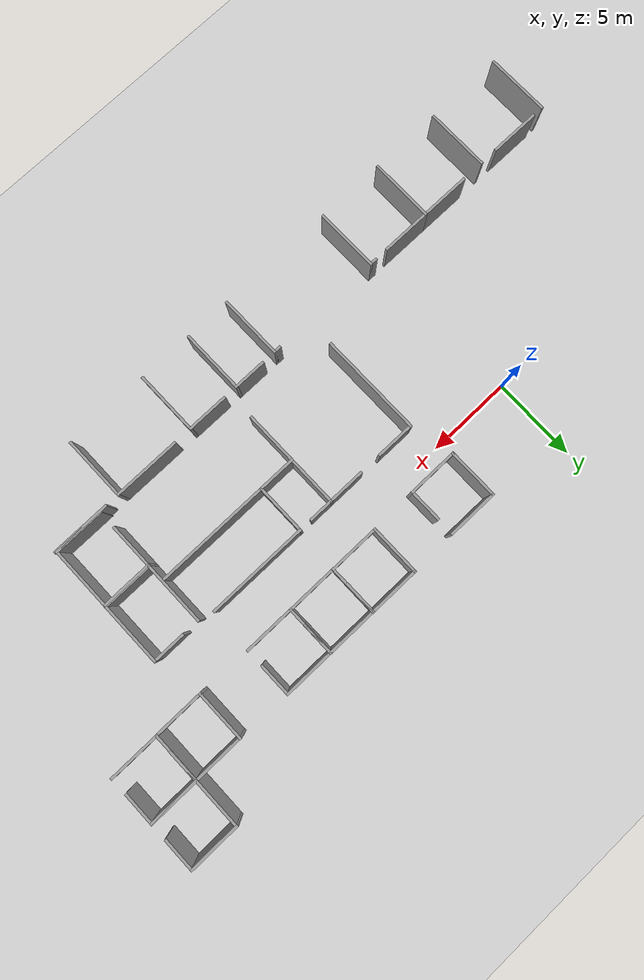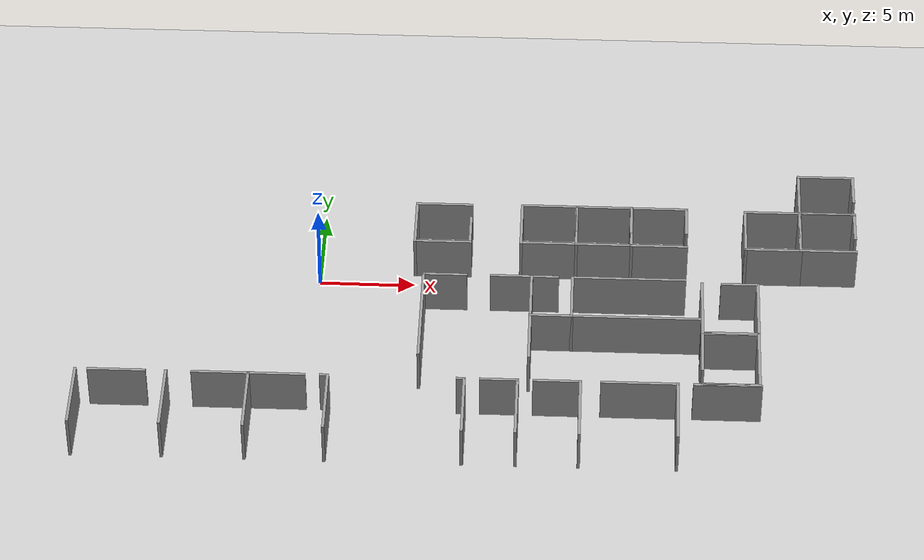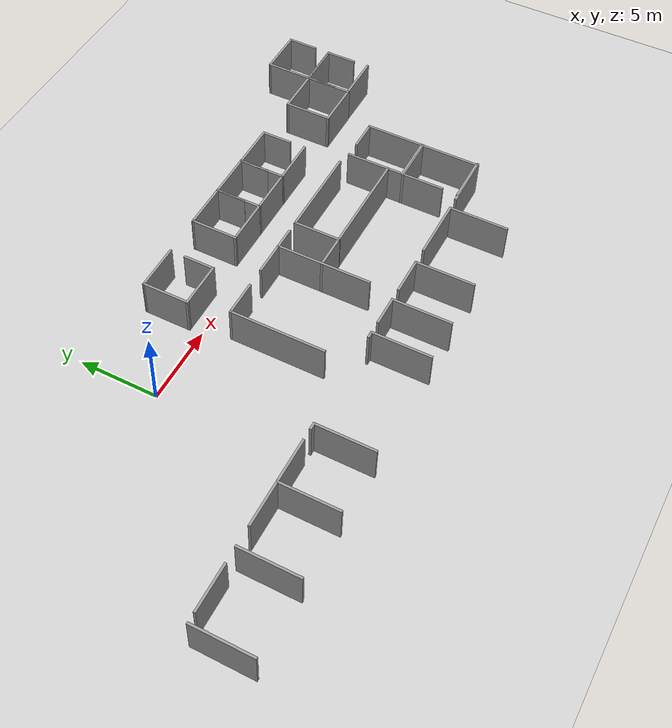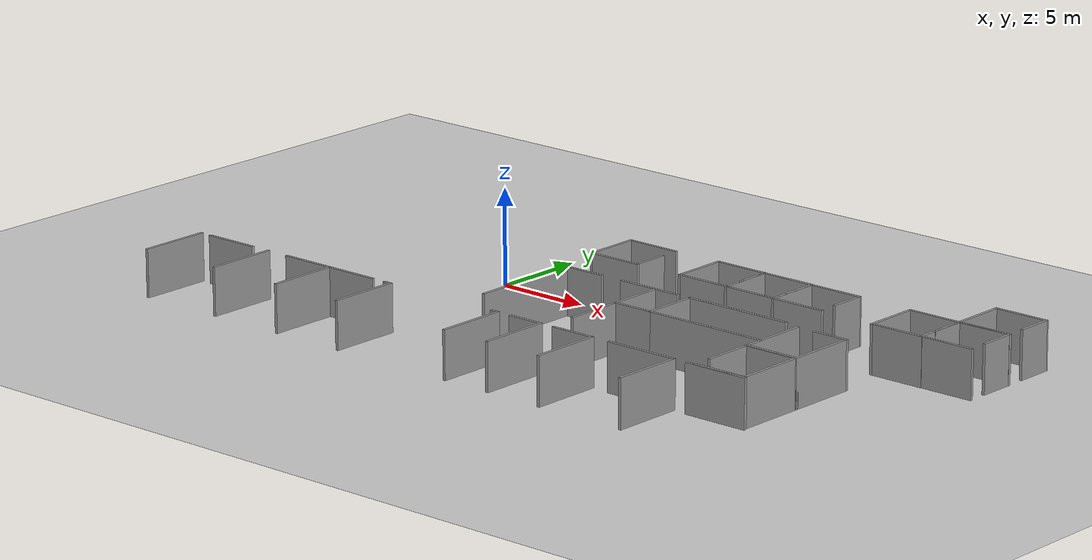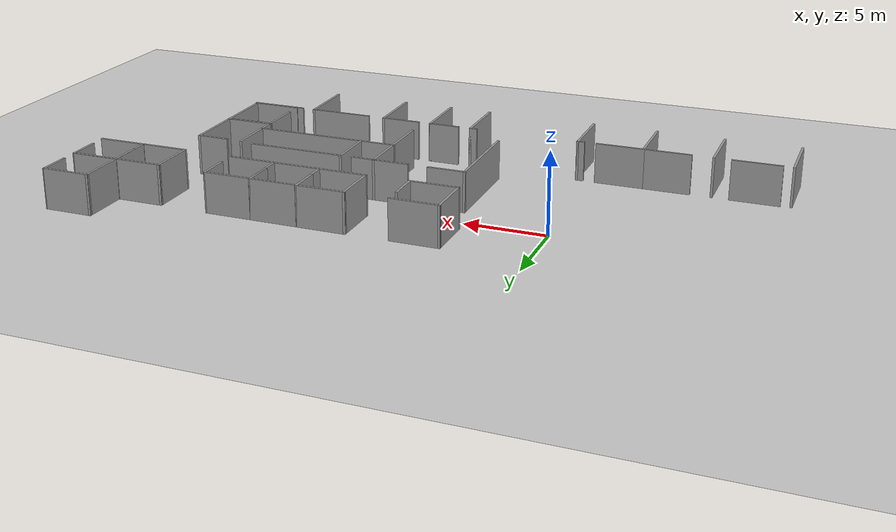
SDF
<sdf version="1.6">
 <world name="default">
  <model name="ground_plane">
   <static>1</static>
   <link name="link">
    <collision name="collision">
     <geometry><plane><normal>0 0 1</normal><size>100 100</size></plane></geometry>
     <surface><friction><ode><mu>100</mu><mu2>50</mu2></ode></friction></surface>
    </collision>
    <visual name="visual">
     <cast_shadows>0</cast_shadows>
     <geometry><plane><normal>0 0 1</normal><size>100 100</size></plane></geometry>
     <material>
      <script><uri>file://media/materials/scripts/gazebo.material</uri><name>Gazebo/Grey</name></script>
     </material>
    </visual>
   </link>
  </model>
  <model name="F3MidRooms_2">
   <pose>12.025 2.32307 0 0 -0 0</pose>
   <link name="Wall_68">
    <collision name="Wall_68_Collision">
     <geometry><box><size>3.048 0.15 2.5</size></box></geometry>
     <pose>0 0 1.25 0 -0 0</pose>
    </collision>
    <visual name="Wall_68_Visual">
     <pose>0 0 1.25 0 -0 0</pose>
     <geometry><box><size>3.048 0.15 2.5</size></box></geometry>
     <material>
      <script><uri>file://media/materials/scripts/gazebo.material</uri><name>Gazebo/Grey</name></script>
      <ambient>1 1 1 1</ambient>
     </material>
     <meta><layer>0</layer></meta>
    </visual>
    <pose>0 -1.44909 0 0 -0 -0.000152</pose>
   </link>
   <link name="Wall_70">
    <collision name="Wall_70_Collision">
     <geometry><box><size>3.04786 0.15 2.5</size></box></geometry>
     <pose>0 0 1.25 0 -0 0</pose>
    </collision>
    <visual name="Wall_70_Visual">
     <pose>0 0 1.25 0 -0 0</pose>
     <geometry><box><size>3.04786 0.15 2.5</size></box></geometry>
     <material>
      <script><uri>file://media/materials/scripts/gazebo.material</uri><name>Gazebo/Grey</name></script>
      <ambient>1 1 1 1</ambient>
     </material>
     <meta><layer>0</layer></meta>
    </visual>
    <pose>0 1.44891 0 0 -0 3.14144</pose>
   </link>
   <link name="Wall_71">
    <collision name="Wall_71_Collision">
     <geometry><box><size>3.0484 0.15 2.5</size></box></geometry>
     <pose>0 0 1.25 0 -0 0</pose>
    </collision>
    <visual name="Wall_71_Visual">
     <pose>0 0 1.25 0 -0 0</pose>
     <geometry><box><size>3.0484 0.15 2.5</size></box></geometry>
     <material>
      <script><uri>file://media/materials/scripts/gazebo.material</uri><name>Gazebo/Grey</name></script>
      <ambient>1 1 1 1</ambient>
     </material>
     <meta><layer>0</layer></meta>
    </visual>
    <pose>-1.44893 0.000126 0 0 -0 -1.5708</pose>
   </link>
   <link name="Wall_73">
    <collision name="Wall_73_Collision">
     <geometry><box><size>2 0.15 2.5</size></box></geometry>
     <pose>0 0 1.25 0 -0 0</pose>
    </collision>
    <visual name="Wall_73_Visual">
     <pose>0 0 1.25 0 -0 0</pose>
     <geometry><box><size>2 0.15 2.5</size></box></geometry>
     <material>
      <script><uri>file://media/materials/scripts/gazebo.material</uri><name>Gazebo/Grey</name></script>
      <ambient>1 1 1 1</ambient>
     </material>
     <meta><layer>0</layer></meta>
    </visual>
    <pose>1.44893 0.523687 0 0 -0 -1.5708</pose>
   </link>
   <static>1</static>
  </model>
  <model name="F3MidRooms_3">
   <pose>14.9346 2.31741 0 0 -0 0</pose>
   <link name="Wall_68">
    <collision name="Wall_68_Collision">
     <geometry><box><size>3.048 0.15 2.5</size></box></geometry>
     <pose>0 0 1.25 0 -0 0</pose>
    </collision>
    <visual name="Wall_68_Visual">
     <pose>0 0 1.25 0 -0 0</pose>
     <geometry><box><size>3.048 0.15 2.5</size></box></geometry>
     <material>
      <script><uri>file://media/materials/scripts/gazebo.material</uri><name>Gazebo/Grey</name></script>
      <ambient>1 1 1 1</ambient>
     </material>
     <meta><layer>0</layer></meta>
    </visual>
    <pose>0 -1.44909 0 0 -0 -0.000152</pose>
   </link>
   <link name="Wall_70">
    <collision name="Wall_70_Collision">
     <geometry><box><size>3.04786 0.15 2.5</size></box></geometry>
     <pose>0 0 1.25 0 -0 0</pose>
    </collision>
    <visual name="Wall_70_Visual">
     <pose>0 0 1.25 0 -0 0</pose>
     <geometry><box><size>3.04786 0.15 2.5</size></box></geometry>
     <material>
      <script><uri>file://media/materials/scripts/gazebo.material</uri><name>Gazebo/Grey</name></script>
      <ambient>1 1 1 1</ambient>
     </material>
     <meta><layer>0</layer></meta>
    </visual>
    <pose>0 1.44891 0 0 -0 3.14144</pose>
   </link>
   <link name="Wall_71">
    <collision name="Wall_71_Collision">
     <geometry><box><size>3.0484 0.15 2.5</size></box></geometry>
     <pose>0 0 1.25 0 -0 0</pose>
    </collision>
    <visual name="Wall_71_Visual">
     <pose>0 0 1.25 0 -0 0</pose>
     <geometry><box><size>3.0484 0.15 2.5</size></box></geometry>
     <material>
      <script><uri>file://media/materials/scripts/gazebo.material</uri><name>Gazebo/Grey</name></script>
      <ambient>1 1 1 1</ambient>
     </material>
     <meta><layer>0</layer></meta>
    </visual>
    <pose>-1.44893 0.000126 0 0 -0 -1.5708</pose>
   </link>
   <link name="Wall_73">
    <collision name="Wall_73_Collision">
     <geometry><box><size>2 0.15 2.5</size></box></geometry>
     <pose>0 0 1.25 0 -0 0</pose>
    </collision>
    <visual name="Wall_73_Visual">
     <pose>0 0 1.25 0 -0 0</pose>
     <geometry><box><size>2 0.15 2.5</size></box></geometry>
     <material>
      <script><uri>file://media/materials/scripts/gazebo.material</uri><name>Gazebo/Grey</name></script>
      <ambient>1 1 1 1</ambient>
     </material>
     <meta><layer>0</layer></meta>
    </visual>
    <pose>1.44893 0.523687 0 0 -0 -1.5708</pose>
   </link>
   <static>1</static>
  </model>
  <model name="F3MidRooms_5">
   <pose>17.8446 2.30989 0 0 -0 0</pose>
   <link name="Wall_68">
    <collision name="Wall_68_Collision">
     <geometry><box><size>3.048 0.15 2.5</size></box></geometry>
     <pose>0 0 1.25 0 -0 0</pose>
    </collision>
    <visual name="Wall_68_Visual">
     <pose>0 0 1.25 0 -0 0</pose>
     <geometry><box><size>3.048 0.15 2.5</size></box></geometry>
     <material>
      <script><uri>file://media/materials/scripts/gazebo.material</uri><name>Gazebo/Grey</name></script>
      <ambient>1 1 1 1</ambient>
     </material>
     <meta><layer>0</layer></meta>
    </visual>
    <pose>0 -1.44909 0 0 -0 -0.000152</pose>
   </link>
   <link name="Wall_70">
    <collision name="Wall_70_Collision">
     <geometry><box><size>3.04786 0.15 2.5</size></box></geometry>
     <pose>0 0 1.25 0 -0 0</pose>
    </collision>
    <visual name="Wall_70_Visual">
     <pose>0 0 1.25 0 -0 0</pose>
     <geometry><box><size>3.04786 0.15 2.5</size></box></geometry>
     <material>
      <script><uri>file://media/materials/scripts/gazebo.material</uri><name>Gazebo/Grey</name></script>
      <ambient>1 1 1 1</ambient>
     </material>
     <meta><layer>0</layer></meta>
    </visual>
    <pose>0 1.44891 0 0 -0 3.14144</pose>
   </link>
   <link name="Wall_71">
    <collision name="Wall_71_Collision">
     <geometry><box><size>3.0484 0.15 2.5</size></box></geometry>
     <pose>0 0 1.25 0 -0 0</pose>
    </collision>
    <visual name="Wall_71_Visual">
     <pose>0 0 1.25 0 -0 0</pose>
     <geometry><box><size>3.0484 0.15 2.5</size></box></geometry>
     <material>
      <script><uri>file://media/materials/scripts/gazebo.material</uri><name>Gazebo/Grey</name></script>
      <ambient>1 1 1 1</ambient>
     </material>
     <meta><layer>0</layer></meta>
    </visual>
    <pose>-1.44893 0.000126 0 0 -0 -1.5708</pose>
   </link>
   <link name="Wall_73">
    <collision name="Wall_73_Collision">
     <geometry><box><size>2 0.15 2.5</size></box></geometry>
     <pose>0 0 1.25 0 -0 0</pose>
    </collision>
    <visual name="Wall_73_Visual">
     <pose>0 0 1.25 0 -0 0</pose>
     <geometry><box><size>2 0.15 2.5</size></box></geometry>
     <material>
      <script><uri>file://media/materials/scripts/gazebo.material</uri><name>Gazebo/Grey</name></script>
      <ambient>1 1 1 1</ambient>
     </material>
     <meta><layer>0</layer></meta>
    </visual>
    <pose>1.44893 0.523687 0 0 -0 -1.5708</pose>
   </link>
   <static>1</static>
  </model>
  <model name="F3MidRooms_7">
   <pose>26.7573 5.1334 0 0 -0 0</pose>
   <link name="Wall_68">
    <collision name="Wall_68_Collision">
     <geometry><box><size>3.048 0.15 2.5</size></box></geometry>
     <pose>0 0 1.25 0 -0 0</pose>
    </collision>
    <visual name="Wall_68_Visual">
     <pose>0 0 1.25 0 -0 0</pose>
     <geometry><box><size>3.048 0.15 2.5</size></box></geometry>
     <material>
      <script><uri>file://media/materials/scripts/gazebo.material</uri><name>Gazebo/Grey</name></script>
      <ambient>1 1 1 1</ambient>
     </material>
     <meta><layer>0</layer></meta>
    </visual>
    <pose>0 -1.44909 0 0 -0 -0.000152</pose>
   </link>
   <link name="Wall_70">
    <collision name="Wall_70_Collision">
     <geometry><box><size>3.04786 0.15 2.5</size></box></geometry>
     <pose>0 0 1.25 0 -0 0</pose>
    </collision>
    <visual name="Wall_70_Visual">
     <pose>0 0 1.25 0 -0 0</pose>
     <geometry><box><size>3.04786 0.15 2.5</size></box></geometry>
     <material>
      <script><uri>file://media/materials/scripts/gazebo.material</uri><name>Gazebo/Grey</name></script>
      <ambient>1 1 1 1</ambient>
     </material>
     <meta><layer>0</layer></meta>
    </visual>
    <pose>0 1.44891 0 0 -0 3.14144</pose>
   </link>
   <link name="Wall_71">
    <collision name="Wall_71_Collision">
     <geometry><box><size>3.0484 0.15 2.5</size></box></geometry>
     <pose>0 0 1.25 0 -0 0</pose>
    </collision>
    <visual name="Wall_71_Visual">
     <pose>0 0 1.25 0 -0 0</pose>
     <geometry><box><size>3.0484 0.15 2.5</size></box></geometry>
     <material>
      <script><uri>file://media/materials/scripts/gazebo.material</uri><name>Gazebo/Grey</name></script>
      <ambient>1 1 1 1</ambient>
     </material>
     <meta><layer>0</layer></meta>
    </visual>
    <pose>-1.44893 0.000126 0 0 -0 -1.5708</pose>
   </link>
   <link name="Wall_73">
    <collision name="Wall_73_Collision">
     <geometry><box><size>2 0.15 2.5</size></box></geometry>
     <pose>0 0 1.25 0 -0 0</pose>
    </collision>
    <visual name="Wall_73_Visual">
     <pose>0 0 1.25 0 -0 0</pose>
     <geometry><box><size>2 0.15 2.5</size></box></geometry>
     <material>
      <script><uri>file://media/materials/scripts/gazebo.material</uri><name>Gazebo/Grey</name></script>
      <ambient>1 1 1 1</ambient>
     </material>
     <meta><layer>0</layer></meta>
    </visual>
    <pose>1.44893 0.523687 0 0 -0 -1.5708</pose>
   </link>
   <static>1</static>
  </model>
  <model name="F3MidRooms_8">
   <pose>26.7497 2.24697 0 0 -0 0</pose>
   <link name="Wall_68">
    <collision name="Wall_68_Collision">
     <geometry><box><size>3.048 0.15 2.5</size></box></geometry>
     <pose>0 0 1.25 0 -0 0</pose>
    </collision>
    <visual name="Wall_68_Visual">
     <pose>0 0 1.25 0 -0 0</pose>
     <geometry><box><size>3.048 0.15 2.5</size></box></geometry>
     <material>
      <script><uri>file://media/materials/scripts/gazebo.material</uri><name>Gazebo/Grey</name></script>
      <ambient>1 1 1 1</ambient>
     </material>
     <meta><layer>0</layer></meta>
    </visual>
    <pose>0 -1.44909 0 0 -0 -0.000152</pose>
   </link>
   <link name="Wall_70">
    <collision name="Wall_70_Collision">
     <geometry><box><size>3.04786 0.15 2.5</size></box></geometry>
     <pose>0 0 1.25 0 -0 0</pose>
    </collision>
    <visual name="Wall_70_Visual">
     <pose>0 0 1.25 0 -0 0</pose>
     <geometry><box><size>3.04786 0.15 2.5</size></box></geometry>
     <material>
      <script><uri>file://media/materials/scripts/gazebo.material</uri><name>Gazebo/Grey</name></script>
      <ambient>1 1 1 1</ambient>
     </material>
     <meta><layer>0</layer></meta>
    </visual>
    <pose>0 1.44891 0 0 -0 3.14144</pose>
   </link>
   <link name="Wall_71">
    <collision name="Wall_71_Collision">
     <geometry><box><size>3.0484 0.15 2.5</size></box></geometry>
     <pose>0 0 1.25 0 -0 0</pose>
    </collision>
    <visual name="Wall_71_Visual">
     <pose>0 0 1.25 0 -0 0</pose>
     <geometry><box><size>3.0484 0.15 2.5</size></box></geometry>
     <material>
      <script><uri>file://media/materials/scripts/gazebo.material</uri><name>Gazebo/Grey</name></script>
      <ambient>1 1 1 1</ambient>
     </material>
     <meta><layer>0</layer></meta>
    </visual>
    <pose>-1.44893 0.000126 0 0 -0 -1.5708</pose>
   </link>
   <link name="Wall_73">
    <collision name="Wall_73_Collision">
     <geometry><box><size>2 0.15 2.5</size></box></geometry>
     <pose>0 0 1.25 0 -0 0</pose>
    </collision>
    <visual name="Wall_73_Visual">
     <pose>0 0 1.25 0 -0 0</pose>
     <geometry><box><size>2 0.15 2.5</size></box></geometry>
     <material>
      <script><uri>file://media/materials/scripts/gazebo.material</uri><name>Gazebo/Grey</name></script>
      <ambient>1 1 1 1</ambient>
     </material>
     <meta><layer>0</layer></meta>
    </visual>
    <pose>1.44893 0.523687 0 0 -0 -1.5708</pose>
   </link>
   <static>1</static>
  </model>
  <model name="F3MidRooms_10">
   <pose>23.8644 2.23076 0 0 -0 0</pose>
   <link name="Wall_68">
    <collision name="Wall_68_Collision">
     <geometry><box><size>3.048 0.15 2.5</size></box></geometry>
     <pose>0 0 1.25 0 -0 0</pose>
    </collision>
    <visual name="Wall_68_Visual">
     <pose>0 0 1.25 0 -0 0</pose>
     <geometry><box><size>3.048 0.15 2.5</size></box></geometry>
     <material>
      <script><uri>file://media/materials/scripts/gazebo.material</uri><name>Gazebo/Grey</name></script>
      <ambient>1 1 1 1</ambient>
     </material>
     <meta><layer>0</layer></meta>
    </visual>
    <pose>0 -1.44909 0 0 -0 -0.000152</pose>
   </link>
   <link name="Wall_70">
    <collision name="Wall_70_Collision">
     <geometry><box><size>3.04786 0.15 2.5</size></box></geometry>
     <pose>0 0 1.25 0 -0 0</pose>
    </collision>
    <visual name="Wall_70_Visual">
     <pose>0 0 1.25 0 -0 0</pose>
     <geometry><box><size>3.04786 0.15 2.5</size></box></geometry>
     <material>
      <script><uri>file://media/materials/scripts/gazebo.material</uri><name>Gazebo/Grey</name></script>
      <ambient>1 1 1 1</ambient>
     </material>
     <meta><layer>0</layer></meta>
    </visual>
    <pose>0 1.44891 0 0 -0 3.14144</pose>
   </link>
   <link name="Wall_71">
    <collision name="Wall_71_Collision">
     <geometry><box><size>3.0484 0.15 2.5</size></box></geometry>
     <pose>0 0 1.25 0 -0 0</pose>
    </collision>
    <visual name="Wall_71_Visual">
     <pose>0 0 1.25 0 -0 0</pose>
     <geometry><box><size>3.0484 0.15 2.5</size></box></geometry>
     <material>
      <script><uri>file://media/materials/scripts/gazebo.material</uri><name>Gazebo/Grey</name></script>
      <ambient>1 1 1 1</ambient>
     </material>
     <meta><layer>0</layer></meta>
    </visual>
    <pose>-1.44893 0.000126 0 0 -0 -1.5708</pose>
   </link>
   <link name="Wall_73">
    <collision name="Wall_73_Collision">
     <geometry><box><size>2 0.15 2.5</size></box></geometry>
     <pose>0 0 1.25 0 -0 0</pose>
    </collision>
    <visual name="Wall_73_Visual">
     <pose>0 0 1.25 0 -0 0</pose>
     <geometry><box><size>2 0.15 2.5</size></box></geometry>
     <material>
      <script><uri>file://media/materials/scripts/gazebo.material</uri><name>Gazebo/Grey</name></script>
      <ambient>1 1 1 1</ambient>
     </material>
     <meta><layer>0</layer></meta>
    </visual>
    <pose>1.44893 0.523687 0 0 -0 -1.5708</pose>
   </link>
   <static>1</static>
  </model>
  <model name="F3MidRooms_0">
   <link name="Wall_68">
    <pose>0 -1.44909 0 0 0 -0.000152</pose>
    <visual name="Wall_68_Visual">
     <pose>0 0 1.25 0 -0 0</pose>
     <geometry><box><size>3.048 0.15 2.5</size></box></geometry>
     <material>
      <script><uri>file://media/materials/scripts/gazebo.material</uri><name>Gazebo/Grey</name></script>
      <ambient>1 1 1 1</ambient>
      <shader type="pixel"/>
     </material>
     <meta><layer>0</layer></meta>
    </visual>
    <collision name="Wall_68_Collision">
     <pose>0 0 1.25 0 -0 0</pose>
     <geometry><box><size>3.048 0.15 2.5</size></box></geometry>
     <surface>
      <friction>
       <ode><mu>1</mu><mu2>1</mu2><fdir1>0 0 0</fdir1><slip1>0</slip1><slip2>0</slip2></ode>
       <torsional>
        <coefficient>1</coefficient>
        <patch_radius>0</patch_radius>
        <surface_radius>0</surface_radius>
        <use_patch_radius>1</use_patch_radius>
        <ode><slip>0</slip></ode>
       </torsional>
      </friction>
      <bounce><restitution_coefficient>0</restitution_coefficient><threshold>1e+06</threshold></bounce>
      <contact>
       <collide_without_contact>0</collide_without_contact>
       <collide_without_contact_bitmask>1</collide_without_contact_bitmask>
       <collide_bitmask>1</collide_bitmask>
       <ode>
        <soft_cfm>0</soft_cfm>
        <soft_erp>0.2</soft_erp>
        <kp>1e+13</kp>
        <kd>1</kd>
        <max_vel>0.01</max_vel>
        <min_depth>0</min_depth>
       </ode>
       <bullet>
        <split_impulse>1</split_impulse>
        <split_impulse_penetration_threshold>-0.01</split_impulse_penetration_threshold>
        <soft_cfm>0</soft_cfm>
        <soft_erp>0.2</soft_erp>
        <kp>1e+13</kp>
        <kd>1</kd>
       </bullet>
      </contact>
     </surface>
    </collision>
   </link>
   <link name="Wall_70">
    <pose>0 1.44891 0 0 -0 3.14144</pose>
    <visual name="Wall_70_Visual">
     <pose>0 0 1.25 0 -0 0</pose>
     <geometry><box><size>3.04786 0.15 2.5</size></box></geometry>
     <material>
      <script><uri>file://media/materials/scripts/gazebo.material</uri><name>Gazebo/Grey</name></script>
      <ambient>1 1 1 1</ambient>
      <shader type="pixel"/>
     </material>
     <meta><layer>0</layer></meta>
    </visual>
    <collision name="Wall_70_Collision">
     <pose>0 0 1.25 0 -0 0</pose>
     <geometry><box><size>3.04786 0.15 2.5</size></box></geometry>
     <surface>
      <friction>
       <ode><mu>1</mu><mu2>1</mu2><fdir1>0 0 0</fdir1><slip1>0</slip1><slip2>0</slip2></ode>
       <torsional>
        <coefficient>1</coefficient>
        <patch_radius>0</patch_radius>
        <surface_radius>0</surface_radius>
        <use_patch_radius>1</use_patch_radius>
        <ode><slip>0</slip></ode>
       </torsional>
      </friction>
      <bounce><restitution_coefficient>0</restitution_coefficient><threshold>1e+06</threshold></bounce>
      <contact>
       <collide_without_contact>0</collide_without_contact>
       <collide_without_contact_bitmask>1</collide_without_contact_bitmask>
       <collide_bitmask>1</collide_bitmask>
       <ode>
        <soft_cfm>0</soft_cfm>
        <soft_erp>0.2</soft_erp>
        <kp>1e+13</kp>
        <kd>1</kd>
        <max_vel>0.01</max_vel>
        <min_depth>0</min_depth>
       </ode>
       <bullet>
        <split_impulse>1</split_impulse>
        <split_impulse_penetration_threshold>-0.01</split_impulse_penetration_threshold>
        <soft_cfm>0</soft_cfm>
        <soft_erp>0.2</soft_erp>
        <kp>1e+13</kp>
        <kd>1</kd>
       </bullet>
      </contact>
     </surface>
    </collision>
   </link>
   <link name="Wall_71">
    <pose>-1.44893 0.000126 0 0 0 -1.5708</pose>
    <visual name="Wall_71_Visual">
     <pose>0 0 1.25 0 -0 0</pose>
     <geometry><box><size>3.0484 0.15 2.5</size></box></geometry>
     <material>
      <script><uri>file://media/materials/scripts/gazebo.material</uri><name>Gazebo/Grey</name></script>
      <ambient>1 1 1 1</ambient>
      <shader type="pixel"/>
     </material>
     <meta><layer>0</layer></meta>
    </visual>
    <collision name="Wall_71_Collision">
     <pose>0 0 1.25 0 -0 0</pose>
     <geometry><box><size>3.0484 0.15 2.5</size></box></geometry>
     <surface>
      <friction>
       <ode><mu>1</mu><mu2>1</mu2><fdir1>0 0 0</fdir1><slip1>0</slip1><slip2>0</slip2></ode>
       <torsional>
        <coefficient>1</coefficient>
        <patch_radius>0</patch_radius>
        <surface_radius>0</surface_radius>
        <use_patch_radius>1</use_patch_radius>
        <ode><slip>0</slip></ode>
       </torsional>
      </friction>
      <bounce><restitution_coefficient>0</restitution_coefficient><threshold>1e+06</threshold></bounce>
      <contact>
       <collide_without_contact>0</collide_without_contact>
       <collide_without_contact_bitmask>1</collide_without_contact_bitmask>
       <collide_bitmask>1</collide_bitmask>
       <ode>
        <soft_cfm>0</soft_cfm>
        <soft_erp>0.2</soft_erp>
        <kp>1e+13</kp>
        <kd>1</kd>
        <max_vel>0.01</max_vel>
        <min_depth>0</min_depth>
       </ode>
       <bullet>
        <split_impulse>1</split_impulse>
        <split_impulse_penetration_threshold>-0.01</split_impulse_penetration_threshold>
        <soft_cfm>0</soft_cfm>
        <soft_erp>0.2</soft_erp>
        <kp>1e+13</kp>
        <kd>1</kd>
       </bullet>
      </contact>
     </surface>
    </collision>
   </link>
   <link name="Wall_73">
    <pose>1.44893 -0.500054 0 0 0 -1.5708</pose>
    <visual name="Wall_73_Visual">
     <pose>0 0 1.25 0 -0 0</pose>
     <geometry><box><size>2 0.15 2.5</size></box></geometry>
     <material>
      <script><uri>file://media/materials/scripts/gazebo.material</uri><name>Gazebo/Grey</name></script>
      <ambient>1 1 1 1</ambient>
      <shader type="pixel"/>
     </material>
     <meta><layer>0</layer></meta>
    </visual>
    <collision name="Wall_73_Collision">
     <pose>0 0 1.25 0 -0 0</pose>
     <geometry><box><size>2 0.15 2.5</size></box></geometry>
     <surface>
      <friction>
       <ode><mu>1</mu><mu2>1</mu2><fdir1>0 0 0</fdir1><slip1>0</slip1><slip2>0</slip2></ode>
       <torsional>
        <coefficient>1</coefficient>
        <patch_radius>0</patch_radius>
        <surface_radius>0</surface_radius>
        <use_patch_radius>1</use_patch_radius>
        <ode><slip>0</slip></ode>
       </torsional>
      </friction>
      <bounce><restitution_coefficient>0</restitution_coefficient><threshold>1e+06</threshold></bounce>
      <contact>
       <collide_without_contact>0</collide_without_contact>
       <collide_without_contact_bitmask>1</collide_without_contact_bitmask>
       <collide_bitmask>1</collide_bitmask>
       <ode>
        <soft_cfm>0</soft_cfm>
        <soft_erp>0.2</soft_erp>
        <kp>1e+13</kp>
        <kd>1</kd>
        <max_vel>0.01</max_vel>
        <min_depth>0</min_depth>
       </ode>
       <bullet>
        <split_impulse>1</split_impulse>
        <split_impulse_penetration_threshold>-0.01</split_impulse_penetration_threshold>
        <soft_cfm>0</soft_cfm>
        <soft_erp>0.2</soft_erp>
        <kp>1e+13</kp>
        <kd>1</kd>
       </bullet>
      </contact>
     </surface>
    </collision>
   </link>
   <static>1</static>
   <pose>6.43567 2.2688 0 0 -0 0</pose>
  </model>
  <model name="329">
   <pose>21.5473 -3.74983 0 0 -0 0</pose>
   <link name="Wall_0">
    <collision name="Wall_0_Collision">
     <geometry><box><size>3.81 0.15 2.5</size></box></geometry>
     <pose>0 0 1.25 0 -0 0</pose>
    </collision>
    <visual name="Wall_0_Visual">
     <pose>0 0 1.25 0 -0 0</pose>
     <geometry><box><size>3.81 0.15 2.5</size></box></geometry>
     <material>
      <script><uri>file://media/materials/scripts/gazebo.material</uri><name>Gazebo/Grey</name></script>
      <ambient>1 1 1 1</ambient>
     </material>
     <meta><layer>0</layer></meta>
    </visual>
    <pose>-1.449 0 0 0 -0 -1.5708</pose>
   </link>
   <link name="Wall_1">
    <collision name="Wall_1_Collision">
     <geometry><box><size>3.048 0.15 2.5</size></box></geometry>
     <pose>0 0 1.25 0 -0 0</pose>
    </collision>
    <visual name="Wall_1_Visual">
     <pose>0 0 1.25 0 -0 0</pose>
     <geometry><box><size>3.048 0.15 2.5</size></box></geometry>
     <material>
      <script><uri>file://media/materials/scripts/gazebo.material</uri><name>Gazebo/Grey</name></script>
      <ambient>1 1 1 1</ambient>
     </material>
     <meta><layer>0</layer></meta>
    </visual>
    <pose>-0 -1.83 0 0 -0 0</pose>
   </link>
   <link name="Wall_2">
    <collision name="Wall_2_Collision">
     <geometry><box><size>3.81 0.15 2.5</size></box></geometry>
     <pose>0 0 1.25 0 -0 0</pose>
    </collision>
    <visual name="Wall_2_Visual">
     <pose>0 0 1.25 0 -0 0</pose>
     <geometry><box><size>3.81 0.15 2.5</size></box></geometry>
     <material>
      <script><uri>file://media/materials/scripts/gazebo.material</uri><name>Gazebo/Grey</name></script>
      <ambient>1 1 1 1</ambient>
     </material>
     <meta><layer>0</layer></meta>
    </visual>
    <pose>1.449 0 0 0 -0 1.5708</pose>
   </link>
   <link name="Wall_5">
    <collision name="Wall_5_Collision">
     <geometry><box><size>2 0.15 2.5</size></box></geometry>
     <pose>0 0 1.25 0 -0 0</pose>
    </collision>
    <visual name="Wall_5_Visual">
     <pose>0 0 1.25 0 -0 0</pose>
     <geometry><box><size>2 0.15 2.5</size></box></geometry>
     <material>
      <script><uri>file://media/materials/scripts/gazebo.material</uri><name>Gazebo/Grey</name></script>
      <ambient>1 1 1 1</ambient>
     </material>
     <meta><layer>0</layer></meta>
    </visual>
    <pose>0.524 1.83 0 0 -0 3.14159</pose>
   </link>
   <static>1</static>
  </model>
  <model name="308N">
   <pose>21.5383 -7.47941 0 0 -0 0</pose>
   <link name="Wall_12">
    <collision name="Wall_12_Collision">
     <geometry><box><size>2.75 0.15 2.5</size></box></geometry>
     <pose>0 0 1.25 0 -0 0</pose>
    </collision>
    <visual name="Wall_12_Visual">
     <pose>0 0 1.25 0 -0 0</pose>
     <geometry><box><size>2.75 0.15 2.5</size></box></geometry>
     <material>
      <script><uri>file://media/materials/scripts/gazebo.material</uri><name>Gazebo/Grey</name></script>
      <ambient>1 1 1 1</ambient>
     </material>
     <meta><layer>0</layer></meta>
    </visual>
    <pose>-1.449 0.53 0 0 -0 -1.5708</pose>
   </link>
   <link name="Wall_7">
    <collision name="Wall_7_Collision">
     <geometry><box><size>3.048 0.15 2.5</size></box></geometry>
     <pose>0 0 1.25 0 -0 0</pose>
    </collision>
    <visual name="Wall_7_Visual">
     <pose>0 0 1.25 0 -0 0</pose>
     <geometry><box><size>3.048 0.15 2.5</size></box></geometry>
     <material>
      <script><uri>file://media/materials/scripts/gazebo.material</uri><name>Gazebo/Grey</name></script>
      <ambient>1 1 1 1</ambient>
     </material>
     <meta><layer>0</layer></meta>
    </visual>
    <pose>0 -1.83 0 0 -0 0</pose>
   </link>
   <link name="Wall_8">
    <collision name="Wall_8_Collision">
     <geometry><box><size>3.81 0.15 2.5</size></box></geometry>
     <pose>0 0 1.25 0 -0 0</pose>
    </collision>
    <visual name="Wall_8_Visual">
     <pose>0 0 1.25 0 -0 0</pose>
     <geometry><box><size>3.81 0.15 2.5</size></box></geometry>
     <material>
      <script><uri>file://media/materials/scripts/gazebo.material</uri><name>Gazebo/Grey</name></script>
      <ambient>1 1 1 1</ambient>
     </material>
     <meta><layer>0</layer></meta>
    </visual>
    <pose>1.449 0 0 0 -0 1.5708</pose>
   </link>
   <link name="Wall_9">
    <collision name="Wall_9_Collision">
     <geometry><box><size>3.048 0.15 2.5</size></box></geometry>
     <pose>0 0 1.25 0 -0 0</pose>
    </collision>
    <visual name="Wall_9_Visual">
     <pose>0 0 1.25 0 -0 0</pose>
     <geometry><box><size>3.048 0.15 2.5</size></box></geometry>
     <material>
      <script><uri>file://media/materials/scripts/gazebo.material</uri><name>Gazebo/Grey</name></script>
      <ambient>1 1 1 1</ambient>
     </material>
     <meta><layer>0</layer></meta>
    </visual>
    <pose>0 1.83 0 0 -0 3.14159</pose>
   </link>
   <static>1</static>
  </model>
  <model name="F3BottomRooms">
   <pose>5.6015 -11.2088 0 0 -0 0</pose>
   <link name="Wall_48">
    <collision name="Wall_48_Collision">
     <geometry><box><size>3.52319 0.15 2.5</size></box></geometry>
     <pose>0 0 1.25 0 -0 0</pose>
    </collision>
    <visual name="Wall_48_Visual">
     <pose>0 0 1.25 0 -0 0</pose>
     <geometry><box><size>3.52319 0.15 2.5</size></box></geometry>
     <material>
      <script><uri>file://media/materials/scripts/gazebo.material</uri><name>Gazebo/Grey</name></script>
      <ambient>1 1 1 1</ambient>
     </material>
     <meta><layer>0</layer></meta>
    </visual>
    <pose>15.7645 1.84163 0 0 -0 3.14159</pose>
   </link>
   <link name="Wall_50">
    <collision name="Wall_50_Collision">
     <geometry><box><size>4 0.15 2.5</size></box></geometry>
     <pose>0 0 1.25 0 -0 0</pose>
    </collision>
    <visual name="Wall_50_Visual">
     <pose>0 0 1.25 0 -0 0</pose>
     <geometry><box><size>4 0.15 2.5</size></box></geometry>
     <material>
      <script><uri>file://media/materials/scripts/gazebo.material</uri><name>Gazebo/Grey</name></script>
      <ambient>1 1 1 1</ambient>
     </material>
     <meta><layer>0</layer></meta>
    </visual>
    <pose>11.303 1.84163 0 0 -0 3.14159</pose>
   </link>
   <link name="Wall_52">
    <collision name="Wall_52_Collision">
     <geometry><box><size>2.5 0.15 2.5</size></box></geometry>
     <pose>0 0 1.25 0 -0 0</pose>
    </collision>
    <visual name="Wall_52_Visual">
     <pose>0 0 1.25 0 -0 0</pose>
     <geometry><box><size>2.5 0.15 2.5</size></box></geometry>
     <material>
      <script><uri>file://media/materials/scripts/gazebo.material</uri><name>Gazebo/Grey</name></script>
      <ambient>1 1 1 1</ambient>
     </material>
     <meta><layer>0</layer></meta>
    </visual>
    <pose>7.10276 1.84136 0 0 -0 3.14159</pose>
   </link>
   <link name="Wall_54">
    <collision name="Wall_54_Collision">
     <geometry><box><size>2 0.15 2.5</size></box></geometry>
     <pose>0 0 1.25 0 -0 0</pose>
    </collision>
    <visual name="Wall_54_Visual">
     <pose>0 0 1.25 0 -0 0</pose>
     <geometry><box><size>2 0.15 2.5</size></box></geometry>
     <material>
      <script><uri>file://media/materials/scripts/gazebo.material</uri><name>Gazebo/Grey</name></script>
      <ambient>1 1 1 1</ambient>
     </material>
     <meta><layer>0</layer></meta>
    </visual>
    <pose>4.15276 1.84136 0 0 -0 3.14159</pose>
   </link>
   <link name="Wall_56">
    <collision name="Wall_56_Collision">
     <geometry><box><size>0.5 0.15 2.5</size></box></geometry>
     <pose>0 0 1.25 0 -0 0</pose>
    </collision>
    <visual name="Wall_56_Visual">
     <pose>0 0 1.25 0 -0 0</pose>
     <geometry><box><size>0.5 0.15 2.5</size></box></geometry>
     <material>
      <script><uri>file://media/materials/scripts/gazebo.material</uri><name>Gazebo/Grey</name></script>
      <ambient>1 1 1 1</ambient>
     </material>
     <meta><layer>0</layer></meta>
    </visual>
    <pose>2.20276 1.84136 0 0 -0 3.14159</pose>
   </link>
   <link name="Wall_58">
    <collision name="Wall_58_Collision">
     <geometry><box><size>0.5 0.15 2.5</size></box></geometry>
     <pose>0 0 1.25 0 -0 0</pose>
    </collision>
    <visual name="Wall_58_Visual">
     <pose>0 0 1.25 0 -0 0</pose>
     <geometry><box><size>0.5 0.15 2.5</size></box></geometry>
     <material>
      <script><uri>file://media/materials/scripts/gazebo.material</uri><name>Gazebo/Grey</name></script>
      <ambient>1 1 1 1</ambient>
     </material>
     <meta><layer>0</layer></meta>
    </visual>
    <pose>-4.74724 1.84136 0 0 -0 3.14159</pose>
   </link>
   <link name="Wall_60">
    <collision name="Wall_60_Collision">
     <geometry><box><size>3 0.15 2.5</size></box></geometry>
     <pose>0 0 1.25 0 -0 0</pose>
    </collision>
    <visual name="Wall_60_Visual">
     <pose>0 0 1.25 0 -0 0</pose>
     <geometry><box><size>3 0.15 2.5</size></box></geometry>
     <material>
      <script><uri>file://media/materials/scripts/gazebo.material</uri><name>Gazebo/Grey</name></script>
      <ambient>1 1 1 1</ambient>
     </material>
     <meta><layer>0</layer></meta>
    </visual>
    <pose>-7.19724 1.84136 0 0 -0 3.14159</pose>
   </link>
   <link name="Wall_61">
    <collision name="Wall_61_Collision">
     <geometry><box><size>3 0.15 2.5</size></box></geometry>
     <pose>0 0 1.25 0 -0 0</pose>
    </collision>
    <visual name="Wall_61_Visual">
     <pose>0 0 1.25 0 -0 0</pose>
     <geometry><box><size>3 0.15 2.5</size></box></geometry>
     <material>
      <script><uri>file://media/materials/scripts/gazebo.material</uri><name>Gazebo/Grey</name></script>
      <ambient>1 1 1 1</ambient>
     </material>
     <meta><layer>0</layer></meta>
    </visual>
    <pose>-10.0472 1.84136 0 0 -0 3.14159</pose>
   </link>
   <link name="Wall_64">
    <collision name="Wall_64_Collision">
     <geometry><box><size>3 0.15 2.5</size></box></geometry>
     <pose>0 0 1.25 0 -0 0</pose>
    </collision>
    <visual name="Wall_64_Visual">
     <pose>0 0 1.25 0 -0 0</pose>
     <geometry><box><size>3 0.15 2.5</size></box></geometry>
     <material>
      <script><uri>file://media/materials/scripts/gazebo.material</uri><name>Gazebo/Grey</name></script>
      <ambient>1 1 1 1</ambient>
     </material>
     <meta><layer>0</layer></meta>
    </visual>
    <pose>-15.3472 1.84136 0 0 -0 3.14159</pose>
   </link>
   <link name="Wall_68">
    <collision name="Wall_68_Collision">
     <geometry><box><size>3.81 0.15 2.5</size></box></geometry>
     <pose>0 0 1.25 0 -0 0</pose>
    </collision>
    <visual name="Wall_68_Visual">
     <pose>0 0 1.25 0 -0 0</pose>
     <geometry><box><size>3.81 0.15 2.5</size></box></geometry>
     <material>
      <script><uri>file://media/materials/scripts/gazebo.material</uri><name>Gazebo/Grey</name></script>
      <ambient>1 1 1 1</ambient>
     </material>
     <meta><layer>0</layer></meta>
    </visual>
    <pose>-12.8222 0.011359 0 0 -0 -1.5708</pose>
   </link>
   <link name="Wall_70">
    <collision name="Wall_70_Collision">
     <geometry><box><size>3.81 0.15 2.5</size></box></geometry>
     <pose>0 0 1.25 0 -0 0</pose>
    </collision>
    <visual name="Wall_70_Visual">
     <pose>0 0 1.25 0 -0 0</pose>
     <geometry><box><size>3.81 0.15 2.5</size></box></geometry>
     <material>
      <script><uri>file://media/materials/scripts/gazebo.material</uri><name>Gazebo/Grey</name></script>
      <ambient>1 1 1 1</ambient>
     </material>
     <meta><layer>0</layer></meta>
    </visual>
    <pose>-17.451 -0.011631 0 0 -0 -1.5708</pose>
   </link>
   <link name="Wall_72">
    <collision name="Wall_72_Collision">
     <geometry><box><size>3.81 0.15 2.5</size></box></geometry>
     <pose>0 0 1.25 0 -0 0</pose>
    </collision>
    <visual name="Wall_72_Visual">
     <pose>0 0 1.25 0 -0 0</pose>
     <geometry><box><size>3.81 0.15 2.5</size></box></geometry>
     <material>
      <script><uri>file://media/materials/scripts/gazebo.material</uri><name>Gazebo/Grey</name></script>
      <ambient>1 1 1 1</ambient>
     </material>
     <meta><layer>0</layer></meta>
    </visual>
    <pose>-8.62224 0.011359 0 0 -0 -1.5708</pose>
   </link>
   <link name="Wall_74">
    <collision name="Wall_74_Collision">
     <geometry><box><size>3.81 0.15 2.5</size></box></geometry>
     <pose>0 0 1.25 0 -0 0</pose>
    </collision>
    <visual name="Wall_74_Visual">
     <pose>0 0 1.25 0 -0 0</pose>
     <geometry><box><size>3.81 0.15 2.5</size></box></geometry>
     <material>
      <script><uri>file://media/materials/scripts/gazebo.material</uri><name>Gazebo/Grey</name></script>
      <ambient>1 1 1 1</ambient>
     </material>
     <meta><layer>0</layer></meta>
    </visual>
    <pose>-4.57224 0.011359 0 0 -0 -1.5708</pose>
   </link>
   <link name="Wall_76">
    <collision name="Wall_76_Collision">
     <geometry><box><size>3.81 0.15 2.5</size></box></geometry>
     <pose>0 0 1.25 0 -0 0</pose>
    </collision>
    <visual name="Wall_76_Visual">
     <pose>0 0 1.25 0 -0 0</pose>
     <geometry><box><size>3.81 0.15 2.5</size></box></geometry>
     <material>
      <script><uri>file://media/materials/scripts/gazebo.material</uri><name>Gazebo/Grey</name></script>
      <ambient>1 1 1 1</ambient>
     </material>
     <meta><layer>0</layer></meta>
    </visual>
    <pose>2.37776 0.011359 0 0 -0 -1.5708</pose>
   </link>
   <link name="Wall_78">
    <collision name="Wall_78_Collision">
     <geometry><box><size>3.81 0.15 2.5</size></box></geometry>
     <pose>0 0 1.25 0 -0 0</pose>
    </collision>
    <visual name="Wall_78_Visual">
     <pose>0 0 1.25 0 -0 0</pose>
     <geometry><box><size>3.81 0.15 2.5</size></box></geometry>
     <material>
      <script><uri>file://media/materials/scripts/gazebo.material</uri><name>Gazebo/Grey</name></script>
      <ambient>1 1 1 1</ambient>
     </material>
     <meta><layer>0</layer></meta>
    </visual>
    <pose>5.07776 0.011359 0 0 -0 -1.5708</pose>
   </link>
   <link name="Wall_80">
    <collision name="Wall_80_Collision">
     <geometry><box><size>3.81 0.15 2.5</size></box></geometry>
     <pose>0 0 1.25 0 -0 0</pose>
    </collision>
    <visual name="Wall_80_Visual">
     <pose>0 0 1.25 0 -0 0</pose>
     <geometry><box><size>3.81 0.15 2.5</size></box></geometry>
     <material>
      <script><uri>file://media/materials/scripts/gazebo.material</uri><name>Gazebo/Grey</name></script>
      <ambient>1 1 1 1</ambient>
     </material>
     <meta><layer>0</layer></meta>
    </visual>
    <pose>8.27776 0.011359 0 0 -0 -1.5708</pose>
   </link>
   <link name="Wall_82">
    <collision name="Wall_82_Collision">
     <geometry><box><size>3.81 0.15 2.5</size></box></geometry>
     <pose>0 0 1.25 0 -0 0</pose>
    </collision>
    <visual name="Wall_82_Visual">
     <pose>0 0 1.25 0 -0 0</pose>
     <geometry><box><size>3.81 0.15 2.5</size></box></geometry>
     <material>
      <script><uri>file://media/materials/scripts/gazebo.material</uri><name>Gazebo/Grey</name></script>
      <ambient>1 1 1 1</ambient>
     </material>
     <meta><layer>0</layer></meta>
    </visual>
    <pose>13.228 0.011631 0 0 -0 -1.5708</pose>
   </link>
   <static>1</static>
  </model>
  <model name="308">
   <pose>12.8051 -4.66885 0 0 -0 0</pose>
   <link name="Wall_101">
    <collision name="Wall_101_Collision">
     <geometry><box><size>2.346 0.15 2.5</size></box></geometry>
     <pose>0 0 1.25 0 -0 0</pose>
    </collision>
    <visual name="Wall_101_Visual">
     <pose>0 0 1.25 0 -0 0</pose>
     <geometry><box><size>2.346 0.15 2.5</size></box></geometry>
     <material>
      <script><uri>file://media/materials/scripts/gazebo.material</uri><name>Gazebo/Grey</name></script>
      <ambient>1 1 1 1</ambient>
     </material>
     <meta><layer>0</layer></meta>
    </visual>
    <pose>-6.14682 2.97289 0 0 -0 3.14159</pose>
   </link>
   <link name="Wall_103">
    <collision name="Wall_103_Collision">
     <geometry><box><size>6.096 0.15 2.5</size></box></geometry>
     <pose>0 0 1.25 0 -0 0</pose>
    </collision>
    <visual name="Wall_103_Visual">
     <pose>0 0 1.25 0 -0 0</pose>
     <geometry><box><size>6.096 0.15 2.5</size></box></geometry>
     <material>
      <script><uri>file://media/materials/scripts/gazebo.material</uri><name>Gazebo/Grey</name></script>
      <ambient>1 1 1 1</ambient>
     </material>
     <meta><layer>0</layer></meta>
    </visual>
    <pose>-7.24482 -0.000104 0 0 -0 -1.5708</pose>
   </link>
   <link name="Wall_84">
    <collision name="Wall_84_Collision">
     <geometry><box><size>6.858 0.15 2.5</size></box></geometry>
     <pose>0 0 1.25 0 -0 0</pose>
    </collision>
    <visual name="Wall_84_Visual">
     <pose>0 0 1.25 0 -0 0</pose>
     <geometry><box><size>6.858 0.15 2.5</size></box></geometry>
     <material>
      <script><uri>file://media/materials/scripts/gazebo.material</uri><name>Gazebo/Grey</name></script>
      <ambient>1 1 1 1</ambient>
     </material>
     <meta><layer>0</layer></meta>
    </visual>
    <pose>3.89082 0.075105 0 0 -0 3.14159</pose>
   </link>
   <link name="Wall_85">
    <collision name="Wall_85_Collision">
     <geometry><box><size>3.048 0.15 2.5</size></box></geometry>
     <pose>0 0 1.25 0 -0 0</pose>
    </collision>
    <visual name="Wall_85_Visual">
     <pose>0 0 1.25 0 -0 0</pose>
     <geometry><box><size>3.048 0.15 2.5</size></box></geometry>
     <material>
      <script><uri>file://media/materials/scripts/gazebo.material</uri><name>Gazebo/Grey</name></script>
      <ambient>1 1 1 1</ambient>
     </material>
     <meta><layer>0</layer></meta>
    </visual>
    <pose>0.536818 1.52411 0 0 -0 1.5708</pose>
   </link>
   <link name="Wall_86">
    <collision name="Wall_86_Collision">
     <geometry><box><size>6 0.15 2.5</size></box></geometry>
     <pose>0 0 1.25 0 -0 0</pose>
    </collision>
    <visual name="Wall_86_Visual">
     <pose>0 0 1.25 0 -0 0</pose>
     <geometry><box><size>6 0.15 2.5</size></box></geometry>
     <material>
      <script><uri>file://media/materials/scripts/gazebo.material</uri><name>Gazebo/Grey</name></script>
      <ambient>1 1 1 1</ambient>
     </material>
     <meta><layer>0</layer></meta>
    </visual>
    <pose>3.46182 2.9731 0 0 -0 0</pose>
   </link>
   <link name="Wall_88">
    <collision name="Wall_88_Collision">
     <geometry><box><size>2.286 0.15 2.5</size></box></geometry>
     <pose>0 0 1.25 0 -0 0</pose>
    </collision>
    <visual name="Wall_88_Visual">
     <pose>0 0 1.25 0 -0 0</pose>
     <geometry><box><size>2.286 0.15 2.5</size></box></geometry>
     <material>
      <script><uri>file://media/materials/scripts/gazebo.material</uri><name>Gazebo/Grey</name></script>
      <ambient>1 1 1 1</ambient>
     </material>
     <meta><layer>0</layer></meta>
    </visual>
    <pose>-0.530999 0.075 0 0 -0 -3.14149</pose>
   </link>
   <link name="Wall_91">
    <collision name="Wall_91_Collision">
     <geometry><box><size>1.5 0.15 2.5</size></box></geometry>
     <pose>0 0 1.25 0 -0 0</pose>
    </collision>
    <visual name="Wall_91_Visual">
     <pose>0 0 1.25 0 -0 0</pose>
     <geometry><box><size>1.5 0.15 2.5</size></box></geometry>
     <material>
      <script><uri>file://media/materials/scripts/gazebo.material</uri><name>Gazebo/Grey</name></script>
      <ambient>1 1 1 1</ambient>
     </material>
     <meta><layer>0</layer></meta>
    </visual>
    <pose>-0.923816 2.97289 0 0 -0 3.14159</pose>
   </link>
   <link name="Wall_95">
    <collision name="Wall_95_Collision">
     <geometry><box><size>6.096 0.15 2.5</size></box></geometry>
     <pose>0 0 1.25 0 -0 0</pose>
    </collision>
    <visual name="Wall_95_Visual">
     <pose>0 0 1.25 0 -0 0</pose>
     <geometry><box><size>6.096 0.15 2.5</size></box></geometry>
     <material>
      <script><uri>file://media/materials/scripts/gazebo.material</uri><name>Gazebo/Grey</name></script>
      <ambient>1 1 1 1</ambient>
     </material>
     <meta><layer>0</layer></meta>
    </visual>
    <pose>-1.59882 -0.000104 0 0 -0 -1.5708</pose>
   </link>
   <link name="Wall_99">
    <collision name="Wall_99_Collision">
     <geometry><box><size>2.25 0.15 2.5</size></box></geometry>
     <pose>0 0 1.25 0 -0 0</pose>
    </collision>
    <visual name="Wall_99_Visual">
     <pose>0 0 1.25 0 -0 0</pose>
     <geometry><box><size>2.25 0.15 2.5</size></box></geometry>
     <material>
      <script><uri>file://media/materials/scripts/gazebo.material</uri><name>Gazebo/Grey</name></script>
      <ambient>1 1 1 1</ambient>
     </material>
     <meta><layer>0</layer></meta>
    </visual>
    <pose>-2.64882 2.97289 0 0 -0 3.14159</pose>
   </link>
   <static>1</static>
  </model>
 </world>
</sdf>
